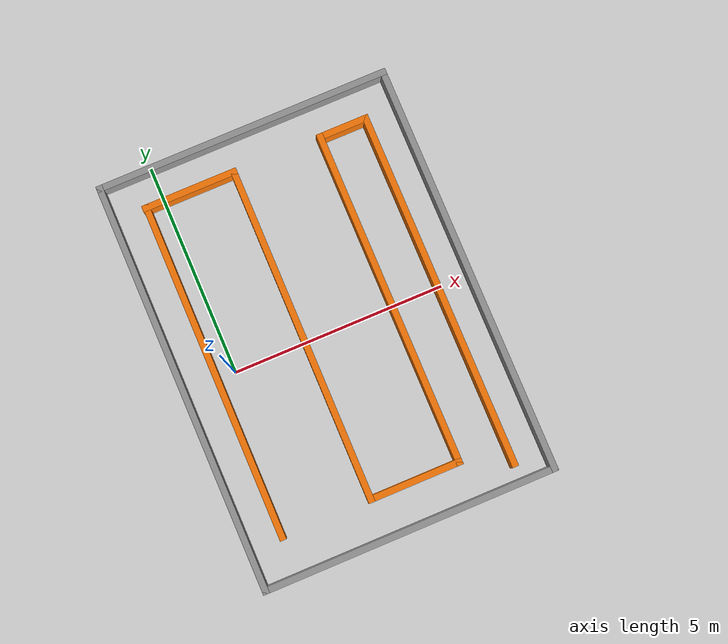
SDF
<?xml version='1.0'?>
<sdf version='1.7'>
  <model name='labirin'>
    <pose>2.215 0.115 0 0 -0 0</pose>
    <link name='Wall_10'>
      <collision name='Wall_10_Collision'>
        <geometry>
          <box>
            <size>8.01802 0.15 0.5</size>
          </box>
        </geometry>
        <pose>0 0 0.25 0 -0 0</pose>
      </collision>
      <visual name='Wall_10_Visual'>
        <pose>0 0 0.25 0 -0 0</pose>
        <geometry>
          <box>
            <size>8.01802 0.15 0.5</size>
          </box>
        </geometry>
        <material>
          <script>
            <uri>file://media/materials/scripts/gazebo.material</uri>
            <name>Gazebo/Grey</name>
          </script>
          <ambient>0.996078 0.47451 0.0196078 1</ambient>
        </material>
        <meta>
          <layer>0</layer>
        </meta>
      </visual>
      <pose>-0.535 0.067 0 0 -0 -1.57283</pose>
    </link>
    <link name='Wall_11'>
      <collision name='Wall_11_Collision'>
        <geometry>
          <box>
            <size>2.25 0.15 0.5</size>
          </box>
        </geometry>
        <pose>0 0 0.25 0 -0 0</pose>
      </collision>
      <visual name='Wall_11_Visual'>
        <pose>0 0 0.25 0 -0 0</pose>
        <geometry>
          <box>
            <size>2.25 0.15 0.5</size>
          </box>
        </geometry>
        <material>
          <script>
            <uri>file://media/materials/scripts/gazebo.material</uri>
            <name>Gazebo/Grey</name>
          </script>
          <ambient>0.996078 0.47451 0.0196078 1</ambient>
        </material>
        <meta>
          <layer>0</layer>
        </meta>
      </visual>
      <pose>0.507 -3.867 0 0 -0 0</pose>
    </link>
    <link name='Wall_12'>
      <collision name='Wall_12_Collision'>
        <geometry>
          <box>
            <size>8 0.15 0.5</size>
          </box>
        </geometry>
        <pose>0 0 0.25 0 -0 0</pose>
      </collision>
      <visual name='Wall_12_Visual'>
        <pose>0 0 0.25 0 -0 0</pose>
        <geometry>
          <box>
            <size>8 0.15 0.5</size>
          </box>
        </geometry>
        <material>
          <script>
            <uri>file://media/materials/scripts/gazebo.material</uri>
            <name>Gazebo/Grey</name>
          </script>
          <ambient>0.996078 0.47451 0.0196078 1</ambient>
        </material>
        <meta>
          <layer>0</layer>
        </meta>
      </visual>
      <pose>1.557 0.058 0 0 -0 1.5708</pose>
    </link>
    <link name='Wall_13'>
      <collision name='Wall_13_Collision'>
        <geometry>
          <box>
            <size>1.25 0.15 0.5</size>
          </box>
        </geometry>
        <pose>0 0 0.25 0 -0 0</pose>
      </collision>
      <visual name='Wall_13_Visual'>
        <pose>0 0 0.25 0 -0 0</pose>
        <geometry>
          <box>
            <size>1.25 0.15 0.5</size>
          </box>
        </geometry>
        <material>
          <script>
            <uri>file://media/materials/scripts/gazebo.material</uri>
            <name>Gazebo/Grey</name>
          </script>
          <ambient>0.996078 0.47451 0.0196078 1</ambient>
        </material>
        <meta>
          <layer>0</layer>
        </meta>
      </visual>
      <pose>2.107 3.983 0 0 -0 0</pose>
    </link>
    <link name='Wall_14'>
      <collision name='Wall_14_Collision'>
        <geometry>
          <box>
            <size>8.5 0.15 0.5</size>
          </box>
        </geometry>
        <pose>0 0 0.25 0 -0 0</pose>
      </collision>
      <visual name='Wall_14_Visual'>
        <pose>0 0 0.25 0 -0 0</pose>
        <geometry>
          <box>
            <size>8.5 0.15 0.5</size>
          </box>
        </geometry>
        <material>
          <script>
            <uri>file://media/materials/scripts/gazebo.material</uri>
            <name>Gazebo/Grey</name>
          </script>
          <ambient>0.996078 0.47451 0.0196078 1</ambient>
        </material>
        <meta>
          <layer>0</layer>
        </meta>
      </visual>
      <pose>2.657 -0.192 0 0 -0 -1.5708</pose>
    </link>
    <link name='Wall_16'>
      <collision name='Wall_16_Collision'>
        <geometry>
          <box>
            <size>9.75 0.15 0.5</size>
          </box>
        </geometry>
        <pose>0 0 0.25 0 -0 0</pose>
      </collision>
      <visual name='Wall_16_Visual'>
        <pose>0 0 0.25 0 -0 0</pose>
        <geometry>
          <box>
            <size>9.75 0.15 0.5</size>
          </box>
        </geometry>
        <material>
          <script>
            <uri>file://media/materials/scripts/gazebo.material</uri>
            <name>Gazebo/Grey</name>
          </script>
          <ambient>1 1 1 1</ambient>
        </material>
        <meta>
          <layer>0</layer>
        </meta>
      </visual>
      <pose>-3.425 0 0 0 -0 -1.5708</pose>
    </link>
    <link name='Wall_17'>
      <collision name='Wall_17_Collision'>
        <geometry>
          <box>
            <size>7 0.15 0.5</size>
          </box>
        </geometry>
        <pose>0 0 0.25 0 -0 0</pose>
      </collision>
      <visual name='Wall_17_Visual'>
        <pose>0 0 0.25 0 -0 0</pose>
        <geometry>
          <box>
            <size>7 0.15 0.5</size>
          </box>
        </geometry>
        <material>
          <script>
            <uri>file://media/materials/scripts/gazebo.material</uri>
            <name>Gazebo/Grey</name>
          </script>
          <ambient>1 1 1 1</ambient>
        </material>
        <meta>
          <layer>0</layer>
        </meta>
      </visual>
      <pose>-0 -4.8 0 0 -0 0</pose>
    </link>
    <link name='Wall_20'>
      <collision name='Wall_20_Collision'>
        <geometry>
          <box>
            <size>9.75 0.15 0.5</size>
          </box>
        </geometry>
        <pose>0 0 0.25 0 -0 0</pose>
      </collision>
      <visual name='Wall_20_Visual'>
        <pose>0 0 0.25 0 -0 0</pose>
        <geometry>
          <box>
            <size>9.75 0.15 0.5</size>
          </box>
        </geometry>
        <material>
          <script>
            <uri>file://media/materials/scripts/gazebo.material</uri>
            <name>Gazebo/Grey</name>
          </script>
          <ambient>1 1 1 1</ambient>
        </material>
        <meta>
          <layer>0</layer>
        </meta>
      </visual>
      <pose>3.425 0 0 0 -0 -1.5708</pose>
    </link>
    <link name='Wall_5'>
      <collision name='Wall_5_Collision'>
        <geometry>
          <box>
            <size>7 0.15 0.5</size>
          </box>
        </geometry>
        <pose>0 0 0.25 0 -0 0</pose>
      </collision>
      <visual name='Wall_5_Visual'>
        <pose>0 0 0.25 0 -0 0</pose>
        <geometry>
          <box>
            <size>7 0.15 0.5</size>
          </box>
        </geometry>
        <material>
          <script>
            <uri>file://media/materials/scripts/gazebo.material</uri>
            <name>Gazebo/Grey</name>
          </script>
          <ambient>1 1 1 1</ambient>
        </material>
        <meta>
          <layer>0</layer>
        </meta>
      </visual>
      <pose>-0 4.8 0 0 -0 0</pose>
    </link>
    <link name='Wall_7'>
      <collision name='Wall_7_Collision'>
        <geometry>
          <box>
            <size>8.01915 0.15 0.5</size>
          </box>
        </geometry>
        <pose>0 0 0.25 0 -0 0</pose>
      </collision>
      <visual name='Wall_7_Visual'>
        <pose>0 0 0.25 0 -0 0</pose>
        <geometry>
          <box>
            <size>8.01915 0.15 0.5</size>
          </box>
        </geometry>
        <material>
          <script>
            <uri>file://media/materials/scripts/gazebo.material</uri>
            <name>Gazebo/Grey</name>
          </script>
          <ambient>0.996078 0.47451 0.0196078 1</ambient>
        </material>
        <meta>
          <layer>0</layer>
        </meta>
      </visual>
      <pose>-2.635 0.067227 0 0 -0 1.56876</pose>
    </link>
    <link name='Wall_9'>
      <collision name='Wall_9_Collision'>
        <geometry>
          <box>
            <size>2.27011 0.15 0.5</size>
          </box>
        </geometry>
        <pose>0 0 0.25 0 -0 0</pose>
      </collision>
      <visual name='Wall_9_Visual'>
        <pose>0 0 0.25 0 -0 0</pose>
        <geometry>
          <box>
            <size>2.27011 0.15 0.5</size>
          </box>
        </geometry>
        <material>
          <script>
            <uri>file://media/materials/scripts/gazebo.material</uri>
            <name>Gazebo/Grey</name>
          </script>
          <ambient>0.996078 0.47451 0.0196078 1</ambient>
        </material>
        <meta>
          <layer>0</layer>
        </meta>
      </visual>
      <pose>-1.58706 4.00123 0 0 -0 -0.000214</pose>
    </link>
    <static>1</static>
  </model>
</sdf>
